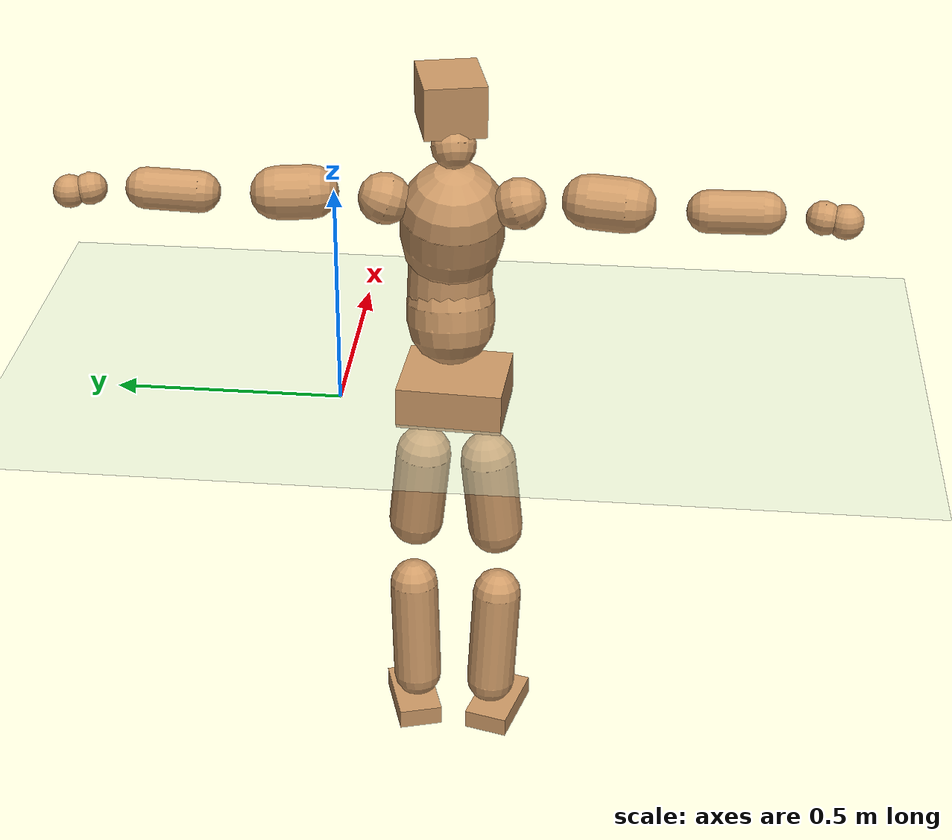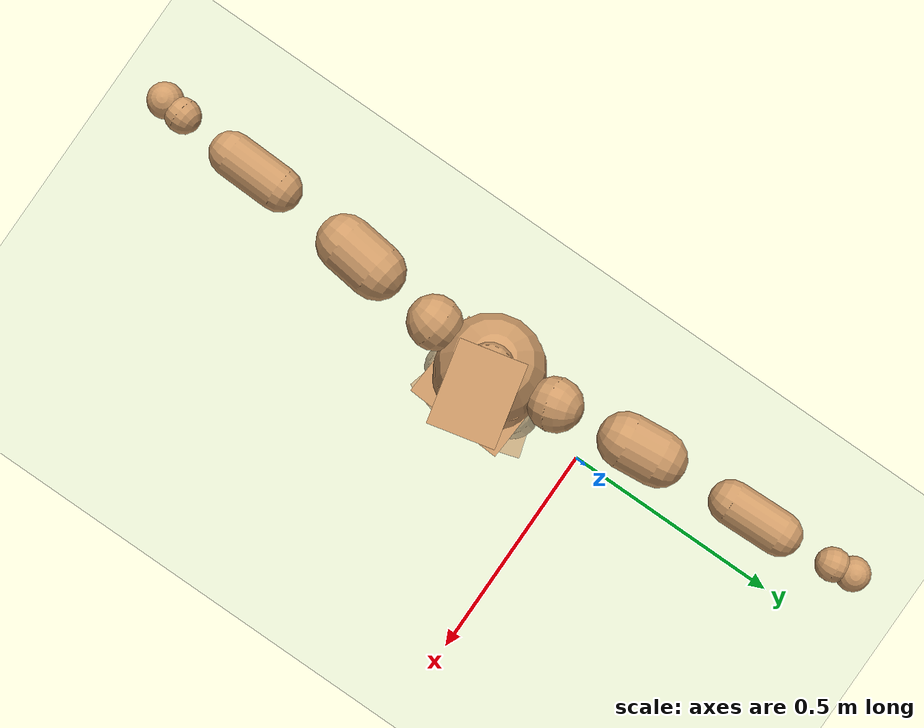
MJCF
<mujoco model="humanoid">
  <compiler coordinate="local" angle="radian"/>
  <default>
    <joint damping="0.0" armature="0.01" stiffness="0.0" limited="true"/>
    <geom conaffinity="1" condim="3" contype="7" margin="0.001" rgba="0.8 0.6 .4 1"/>
  </default>
  <asset>
    <texture type="skybox" builtin="gradient" rgb1=".4 .5 .6" rgb2="0 0 0" width="100" height="100"/>
    <texture builtin="flat" height="1278" mark="cross" markrgb="1 1 1" name="texgeom" random="0.01" rgb1="0.8 0.6 0.4" rgb2="0.8 0.6 0.4" type="cube" width="127"/>
    <texture builtin="checker" height="100" name="texplane" rgb1="0 0 0" rgb2="0.8 0.8 0.8" type="2d" width="100"/>
    <material name="MatPlane" reflectance="0.5" shininess="1" specular="1" texrepeat="60 60" texture="texplane"/>
    <material name="geom" texture="texgeom" texuniform="true"/>
  </asset>
  <worldbody>
    <light cutoff="100" diffuse="1 1 1" dir="-0 0 -1.3" directional="true" exponent="1" pos="0 0 1.3" specular=".1 .1 .1"/>
    <geom conaffinity="1" condim="3" name="floor" pos="0 0 0" rgba="0.8 0.9 0.8 1" size="100 100 .2" type="plane" material="MatPlane"/>
    <body name="Pelvis" pos="-0.001 -0.2582 0.0446">
      <freejoint name="Pelvis"/>
      <geom type="box" contype="1" conaffinity="1" density="5359.374884" pos="-0.0097 0.0006 -0.0072" size="0.1011 0.115 0.047" quat="0.9996 0.0000 0.0000 -0.0291" name="Pelvis"/>
      <body name="L_Hip" pos="-0.0066 0.0619 -0.0843">
        <joint name="L_Hip_x" type="hinge" pos="0 0 0" axis="1 0 0" stiffness="1600" damping="160" armature="0.02" range="-180.0000 180.0000"/>
        <joint name="L_Hip_y" type="hinge" pos="0 0 0" axis="0 1 0" stiffness="1600" damping="160" armature="0.02" range="-180.0000 180.0000"/>
        <joint name="L_Hip_z" type="hinge" pos="0 0 0" axis="0 0 1" stiffness="1600" damping="160" armature="0.02" range="-180.0000 180.0000"/>
        <geom type="capsule" contype="1" conaffinity="1" density="2040.816327" size="0.0621" fromto="0.0022 0.0094 -0.0916 0.0064 0.0279 -0.2724" name="L_Hip"/>
        <body name="L_Knee" pos="0.0086 0.0373 -0.364">
          <joint name="L_Knee_x" type="hinge" pos="0 0 0" axis="1 0 0" stiffness="1600" damping="160" armature="0.02" range="-180.0000 180.0000"/>
          <joint name="L_Knee_y" type="hinge" pos="0 0 0" axis="0 1 0" stiffness="1600" damping="160" armature="0.02" range="-180.0000 180.0000"/>
          <joint name="L_Knee_z" type="hinge" pos="0 0 0" axis="0 0 1" stiffness="1600" damping="160" armature="0.02" range="-180.0000 180.0000"/>
          <geom type="capsule" contype="1" conaffinity="1" density="1234.567901" size="0.0553" fromto="-0.0081 -0.0033 -0.0848 -0.0315 -0.0127 -0.3282" name="L_Knee"/>
          <body name="L_Ankle" pos="-0.0396 -0.016 -0.413">
            <joint name="L_Ankle_x" type="hinge" pos="0 0 0" axis="1 0 0" stiffness="1600" damping="160" armature="0.02" range="-180.0000 180.0000"/>
            <joint name="L_Ankle_y" type="hinge" pos="0 0 0" axis="0 1 0" stiffness="1600" damping="160" armature="0.02" range="-180.0000 180.0000"/>
            <joint name="L_Ankle_z" type="hinge" pos="0 0 0" axis="0 0 1" stiffness="1600" damping="160" armature="0.02" range="-180.0000 180.0000"/>
            <geom type="box" contype="1" conaffinity="1" density="1000.000008" pos="0.0603 0.0181 -0.0290" size="0.0875 0.0499 0.023" quat="0.9894 0.0000 0.0000 0.1453" name="L_Ankle"/>
            <body name="L_Toe" pos="0.1207 0.0362 -0.058">
              <joint name="L_Toe_x" type="hinge" pos="0 0 0" axis="1 0 0" stiffness="1000" damping="100" armature="0.02" range="-180.0000 180.0000"/>
              <joint name="L_Toe_y" type="hinge" pos="0 0 0" axis="0 1 0" stiffness="1000" damping="100" armature="0.02" range="-180.0000 180.0000"/>
              <joint name="L_Toe_z" type="hinge" pos="0 0 0" axis="0 0 1" stiffness="1000" damping="100" armature="0.02" range="-180.0000 180.0000"/>
              <geom type="box" contype="1" conaffinity="1" density="8637993.571903" pos="0.0000 0.0000 0.0291" size="0.001 0.0024 0.0012" quat="0.9886 0.0000 0.0000 0.1505" name="L_Toe"/>
            </body>
          </body>
        </body>
      </body>
      <body name="R_Hip" pos="-0.0009 -0.063 -0.0937">
        <joint name="R_Hip_x" type="hinge" pos="0 0 0" axis="1 0 0" stiffness="1600" damping="160" armature="0.02" range="-180.0000 180.0000"/>
        <joint name="R_Hip_y" type="hinge" pos="0 0 0" axis="0 1 0" stiffness="1600" damping="160" armature="0.02" range="-180.0000 180.0000"/>
        <joint name="R_Hip_z" type="hinge" pos="0 0 0" axis="0 0 1" stiffness="1600" damping="160" armature="0.02" range="-180.0000 180.0000"/>
        <geom type="capsule" contype="1" conaffinity="1" density="2040.816327" size="0.0618" fromto="-0.0007 -0.0098 -0.0913 -0.0022 -0.0294 -0.2736" name="R_Hip"/>
        <body name="R_Knee" pos="-0.003 -0.0392 -0.3649">
          <joint name="R_Knee_x" type="hinge" pos="0 0 0" axis="1 0 0" stiffness="1600" damping="160" armature="0.02" range="-180.0000 180.0000"/>
          <joint name="R_Knee_y" type="hinge" pos="0 0 0" axis="0 1 0" stiffness="1600" damping="160" armature="0.02" range="-180.0000 180.0000"/>
          <joint name="R_Knee_z" type="hinge" pos="0 0 0" axis="0 0 1" stiffness="1600" damping="160" armature="0.02" range="-180.0000 180.0000"/>
          <geom type="capsule" contype="1" conaffinity="1" density="1234.567901" size="0.0555" fromto="-0.0076 0.0039 -0.0850 -0.0288 0.0148 -0.3219" name="R_Knee"/>
          <body name="R_Ankle" pos="-0.0364 0.0187 -0.4069">
            <joint name="R_Ankle_x" type="hinge" pos="0 0 0" axis="1 0 0" stiffness="1600" damping="160" armature="0.02" range="-180.0000 180.0000"/>
            <joint name="R_Ankle_y" type="hinge" pos="0 0 0" axis="0 1 0" stiffness="1600" damping="160" armature="0.02" range="-180.0000 180.0000"/>
            <joint name="R_Ankle_z" type="hinge" pos="0 0 0" axis="0 0 1" stiffness="1600" damping="160" armature="0.02" range="-180.0000 180.0000"/>
            <geom type="box" contype="1" conaffinity="1" density="1000.000006" pos="0.0636 -0.0169 -0.0298" size="0.0887 0.0505 0.0225" quat="0.9916 0.0000 0.0000 -0.1296" name="R_Ankle"/>
            <body name="R_Toe" pos="0.1273 -0.0339 -0.0597">
              <joint name="R_Toe_x" type="hinge" pos="0 0 0" axis="1 0 0" stiffness="1000" damping="100" armature="0.02" range="-180.0000 180.0000"/>
              <joint name="R_Toe_y" type="hinge" pos="0 0 0" axis="0 1 0" stiffness="1000" damping="100" armature="0.02" range="-180.0000 180.0000"/>
              <joint name="R_Toe_z" type="hinge" pos="0 0 0" axis="0 0 1" stiffness="1000" damping="100" armature="0.02" range="-180.0000 180.0000"/>
              <geom type="box" contype="1" conaffinity="1" density="8129787.91884" pos="0.0000 0.0000 0.0306" size="0.0011 0.0025 0.0012" quat="0.9927 0.0000 0.0000 -0.1205" name="R_Toe"/>
            </body>
          </body>
        </body>
      </body>
      <body name="Torso" pos="-0.051 0.0046 0.1346">
        <joint name="Torso_x" type="hinge" pos="0 0 0" axis="1 0 0" stiffness="2000" damping="200" armature="0.02" range="-180.0000 180.0000"/>
        <joint name="Torso_y" type="hinge" pos="0 0 0" axis="0 1 0" stiffness="2000" damping="200" armature="0.02" range="-180.0000 180.0000"/>
        <joint name="Torso_z" type="hinge" pos="0 0 0" axis="0 0 1" stiffness="2000" damping="200" armature="0.02" range="-180.0000 180.0000"/>
        <geom type="capsule" contype="1" conaffinity="1" density="2040.816327" size="0.0945" fromto="0.0163 0.0037 0.0930 0.0084 0.0019 0.0481" name="Torso"/>
        <body name="Spine" pos="0.0247 0.0056 0.1411">
          <joint name="Spine_x" type="hinge" pos="0 0 0" axis="1 0 0" stiffness="2000" damping="200" armature="0.02" range="-180.0000 180.0000"/>
          <joint name="Spine_y" type="hinge" pos="0 0 0" axis="0 1 0" stiffness="2000" damping="200" armature="0.02" range="-180.0000 180.0000"/>
          <joint name="Spine_z" type="hinge" pos="0 0 0" axis="0 0 1" stiffness="2000" damping="200" armature="0.02" range="-180.0000 180.0000"/>
          <geom type="capsule" contype="1" conaffinity="1" density="2040.816327" size="0.0905" fromto="0.0057 -0.0047 0.0902 -0.0021 0.0017 -0.0332" name="Spine"/>
          <body name="Chest" pos="0.0036 -0.0029 0.057">
            <joint name="Chest_x" type="hinge" pos="0 0 0" axis="1 0 0" stiffness="2000" damping="200" armature="0.02" range="-180.0000 180.0000"/>
            <joint name="Chest_y" type="hinge" pos="0 0 0" axis="0 1 0" stiffness="2000" damping="200" armature="0.02" range="-180.0000 180.0000"/>
            <joint name="Chest_z" type="hinge" pos="0 0 0" axis="0 0 1" stiffness="2000" damping="200" armature="0.02" range="-180.0000 180.0000"/>
            <geom type="capsule" contype="1" conaffinity="1" density="2040.816327" size="0.1097" fromto="-0.0256 -0.0056 0.1065 -0.0106 -0.0023 0.0439" name="Chest"/>
            <body name="Neck" pos="-0.0501 -0.0116 0.2164">
              <joint name="Neck_x" type="hinge" pos="0 0 0" axis="1 0 0" stiffness="1000" damping="100" armature="0.02" range="-180.0000 180.0000"/>
              <joint name="Neck_y" type="hinge" pos="0 0 0" axis="0 1 0" stiffness="1000" damping="100" armature="0.02" range="-180.0000 180.0000"/>
              <joint name="Neck_z" type="hinge" pos="0 0 0" axis="0 0 1" stiffness="1000" damping="100" armature="0.02" range="-180.0000 180.0000"/>
              <geom type="capsule" contype="1" conaffinity="1" density="1000" size="0.0473" fromto="0.0249 0.0051 0.0383 0.0259 0.0053 0.0400" name="Neck"/>
              <body name="Head" pos="0.0508 0.0104 0.0783">
                <joint name="Head_x" type="hinge" pos="0 0 0" axis="1 0 0" stiffness="1000" damping="100" armature="0.02" range="-180.0000 180.0000"/>
                <joint name="Head_y" type="hinge" pos="0 0 0" axis="0 1 0" stiffness="1000" damping="100" armature="0.02" range="-180.0000 180.0000"/>
                <joint name="Head_z" type="hinge" pos="0 0 0" axis="0 0 1" stiffness="1000" damping="100" armature="0.02" range="-180.0000 180.0000"/>
                <geom type="box" contype="1" conaffinity="1" density="2249.999859" pos="0.0264 0.0062 0.0402" size="0.0811 0.0651 0.0552" quat="0.9933 0.0000 0.0000 0.1152" name="Head"/>
              </body>
            </body>
            <body name="L_Thorax" pos="-0.0278 0.0729 0.118">
              <joint name="L_Thorax_x" type="hinge" pos="0 0 0" axis="1 0 0" stiffness="1000" damping="100" armature="0.02" range="-180.0000 180.0000"/>
              <joint name="L_Thorax_y" type="hinge" pos="0 0 0" axis="0 1 0" stiffness="1000" damping="100" armature="0.02" range="-180.0000 180.0000"/>
              <joint name="L_Thorax_z" type="hinge" pos="0 0 0" axis="0 0 1" stiffness="1000" damping="100" armature="0.02" range="-180.0000 180.0000"/>
              <geom type="capsule" contype="1" conaffinity="1" density="1000" size="0.0547" fromto="-0.0114 0.0613 0.0201 -0.0118 0.0631 0.0208" name="L_Thorax"/>
              <body name="L_Shoulder" pos="-0.0232 0.1244 0.0409">
                <joint name="L_Shoulder_x" type="hinge" pos="0 0 0" axis="1 0 0" stiffness="1000" damping="100" armature="0.02" range="-720.0000 720.0000"/>
                <joint name="L_Shoulder_y" type="hinge" pos="0 0 0" axis="0 1 0" stiffness="1000" damping="100" armature="0.02" range="-720.0000 720.0000"/>
                <joint name="L_Shoulder_z" type="hinge" pos="0 0 0" axis="0 0 1" stiffness="1000" damping="100" armature="0.02" range="-720.0000 720.0000"/>
                <geom type="capsule" contype="1" conaffinity="1" density="1000" size="0.0565" fromto="-0.0086 0.0860 -0.0031 -0.0157 0.1564 -0.0056" name="L_Shoulder"/>
                <body name="L_Elbow" pos="-0.0243 0.2425 -0.0087">
                  <joint name="L_Elbow_x" type="hinge" pos="0 0 0" axis="1 0 0" stiffness="1000" damping="100" armature="0.02" range="-720.0000 720.0000"/>
                  <joint name="L_Elbow_y" type="hinge" pos="0 0 0" axis="0 1 0" stiffness="1000" damping="100" armature="0.02" range="-720.0000 720.0000"/>
                  <joint name="L_Elbow_z" type="hinge" pos="0 0 0" axis="0 0 1" stiffness="1000" damping="100" armature="0.02" range="-720.0000 720.0000"/>
                  <geom type="capsule" contype="1" conaffinity="1" density="1000" size="0.0439" fromto="-0.0023 0.0737 0.0035 -0.0057 0.1834 0.0087" name="L_Elbow"/>
                  <body name="L_Wrist" pos="-0.0079 0.2571 0.0123">
                    <joint name="L_Wrist_x" type="hinge" pos="0 0 0" axis="1 0 0" stiffness="600" damping="60" armature="0.02" range="-180.0000 180.0000"/>
                    <joint name="L_Wrist_y" type="hinge" pos="0 0 0" axis="0 1 0" stiffness="600" damping="60" armature="0.02" range="-180.0000 180.0000"/>
                    <joint name="L_Wrist_z" type="hinge" pos="0 0 0" axis="0 0 1" stiffness="600" damping="60" armature="0.02" range="-180.0000 180.0000"/>
                    <geom type="capsule" contype="1" conaffinity="1" density="1000" size="0.0339" fromto="-0.0072 0.0411 -0.0049 -0.0076 0.0431 -0.0052" name="L_Wrist"/>
                    <body name="L_Hand" pos="-0.0148 0.0842 -0.0101">
                      <joint name="L_Hand_x" type="hinge" pos="0 0 0" axis="1 0 0" stiffness="600" damping="60" armature="0.02" range="-180.0000 180.0000"/>
                      <joint name="L_Hand_y" type="hinge" pos="0 0 0" axis="0 1 0" stiffness="600" damping="60" armature="0.02" range="-180.0000 180.0000"/>
                      <joint name="L_Hand_z" type="hinge" pos="0 0 0" axis="0 0 1" stiffness="600" damping="60" armature="0.02" range="-180.0000 180.0000"/>
                      <geom type="sphere" contype="1" conaffinity="1" density="1000" size="0.0347" pos="0.0000 0.0000 0.0000" name="L_Hand"/>
                    </body>
                  </body>
                </body>
              </body>
            </body>
            <body name="R_Thorax" pos="-0.0306 -0.0852 0.1168">
              <joint name="R_Thorax_x" type="hinge" pos="0 0 0" axis="1 0 0" stiffness="1000" damping="100" armature="0.02" range="-180.0000 180.0000"/>
              <joint name="R_Thorax_y" type="hinge" pos="0 0 0" axis="0 1 0" stiffness="1000" damping="100" armature="0.02" range="-180.0000 180.0000"/>
              <joint name="R_Thorax_z" type="hinge" pos="0 0 0" axis="0 0 1" stiffness="1000" damping="100" armature="0.02" range="-180.0000 180.0000"/>
              <geom type="capsule" contype="1" conaffinity="1" density="1000" size="0.0546" fromto="-0.0060 -0.0569 0.0206 -0.0062 -0.0587 0.0212" name="R_Thorax"/>
              <body name="R_Shoulder" pos="-0.0122 -0.1156 0.0418">
                <joint name="R_Shoulder_x" type="hinge" pos="0 0 0" axis="1 0 0" stiffness="1000" damping="100" armature="0.02" range="-720.0000 720.0000"/>
                <joint name="R_Shoulder_y" type="hinge" pos="0 0 0" axis="0 1 0" stiffness="1000" damping="100" armature="0.02" range="-720.0000 720.0000"/>
                <joint name="R_Shoulder_z" type="hinge" pos="0 0 0" axis="0 0 1" stiffness="1000" damping="100" armature="0.02" range="-720.0000 720.0000"/>
                <geom type="capsule" contype="1" conaffinity="1" density="1000" size="0.0571" fromto="-0.0106 -0.0865 -0.0015 -0.0202 -0.1658 -0.0029" name="R_Shoulder"/>
                <body name="R_Elbow" pos="-0.0308 -0.2523 -0.0043">
                  <joint name="R_Elbow_x" type="hinge" pos="0 0 0" axis="1 0 0" stiffness="1000" damping="100" armature="0.02" range="-720.0000 720.0000"/>
                  <joint name="R_Elbow_y" type="hinge" pos="0 0 0" axis="0 1 0" stiffness="1000" damping="100" armature="0.02" range="-720.0000 720.0000"/>
                  <joint name="R_Elbow_z" type="hinge" pos="0 0 0" axis="0 0 1" stiffness="1000" damping="100" armature="0.02" range="-720.0000 720.0000"/>
                  <geom type="capsule" contype="1" conaffinity="1" density="1000" size="0.0446" fromto="-0.0021 -0.0746 0.0020 -0.0052 -0.1856 0.0051" name="R_Elbow"/>
                  <body name="R_Wrist" pos="-0.0073 -0.2602 0.0071">
                    <joint name="R_Wrist_x" type="hinge" pos="0 0 0" axis="1 0 0" stiffness="600" damping="60" armature="0.02" range="-180.0000 180.0000"/>
                    <joint name="R_Wrist_y" type="hinge" pos="0 0 0" axis="0 1 0" stiffness="600" damping="60" armature="0.02" range="-180.0000 180.0000"/>
                    <joint name="R_Wrist_z" type="hinge" pos="0 0 0" axis="0 0 1" stiffness="600" damping="60" armature="0.02" range="-180.0000 180.0000"/>
                    <geom type="capsule" contype="1" conaffinity="1" density="1000" size="0.0352" fromto="-0.0047 -0.0431 -0.0042 -0.0049 -0.0451 -0.0044" name="R_Wrist"/>
                    <body name="R_Hand" pos="-0.0096 -0.0882 -0.0085">
                      <joint name="R_Hand_x" type="hinge" pos="0 0 0" axis="1 0 0" stiffness="600" damping="60" armature="0.02" range="-180.0000 180.0000"/>
                      <joint name="R_Hand_y" type="hinge" pos="0 0 0" axis="0 1 0" stiffness="600" damping="60" armature="0.02" range="-180.0000 180.0000"/>
                      <joint name="R_Hand_z" type="hinge" pos="0 0 0" axis="0 0 1" stiffness="600" damping="60" armature="0.02" range="-180.0000 180.0000"/>
                      <geom type="sphere" contype="1" conaffinity="1" density="1000" size="0.0360" pos="0.0000 0.0000 0.0000" name="R_Hand"/>
                    </body>
                  </body>
                </body>
              </body>
            </body>
          </body>
        </body>
      </body>
    </body>
  </worldbody>
  <actuator>
    <motor name="L_Hip_x" joint="L_Hip_x" gear="500"/>
    <motor name="L_Hip_y" joint="L_Hip_y" gear="500"/>
    <motor name="L_Hip_z" joint="L_Hip_z" gear="500"/>
    <motor name="L_Knee_x" joint="L_Knee_x" gear="500"/>
    <motor name="L_Knee_y" joint="L_Knee_y" gear="500"/>
    <motor name="L_Knee_z" joint="L_Knee_z" gear="500"/>
    <motor name="L_Ankle_x" joint="L_Ankle_x" gear="500"/>
    <motor name="L_Ankle_y" joint="L_Ankle_y" gear="500"/>
    <motor name="L_Ankle_z" joint="L_Ankle_z" gear="500"/>
    <motor name="L_Toe_x" joint="L_Toe_x" gear="500"/>
    <motor name="L_Toe_y" joint="L_Toe_y" gear="500"/>
    <motor name="L_Toe_z" joint="L_Toe_z" gear="500"/>
    <motor name="R_Hip_x" joint="R_Hip_x" gear="500"/>
    <motor name="R_Hip_y" joint="R_Hip_y" gear="500"/>
    <motor name="R_Hip_z" joint="R_Hip_z" gear="500"/>
    <motor name="R_Knee_x" joint="R_Knee_x" gear="500"/>
    <motor name="R_Knee_y" joint="R_Knee_y" gear="500"/>
    <motor name="R_Knee_z" joint="R_Knee_z" gear="500"/>
    <motor name="R_Ankle_x" joint="R_Ankle_x" gear="500"/>
    <motor name="R_Ankle_y" joint="R_Ankle_y" gear="500"/>
    <motor name="R_Ankle_z" joint="R_Ankle_z" gear="500"/>
    <motor name="R_Toe_x" joint="R_Toe_x" gear="500"/>
    <motor name="R_Toe_y" joint="R_Toe_y" gear="500"/>
    <motor name="R_Toe_z" joint="R_Toe_z" gear="500"/>
    <motor name="Torso_x" joint="Torso_x" gear="500"/>
    <motor name="Torso_y" joint="Torso_y" gear="500"/>
    <motor name="Torso_z" joint="Torso_z" gear="500"/>
    <motor name="Spine_x" joint="Spine_x" gear="500"/>
    <motor name="Spine_y" joint="Spine_y" gear="500"/>
    <motor name="Spine_z" joint="Spine_z" gear="500"/>
    <motor name="Chest_x" joint="Chest_x" gear="500"/>
    <motor name="Chest_y" joint="Chest_y" gear="500"/>
    <motor name="Chest_z" joint="Chest_z" gear="500"/>
    <motor name="Neck_x" joint="Neck_x" gear="500"/>
    <motor name="Neck_y" joint="Neck_y" gear="500"/>
    <motor name="Neck_z" joint="Neck_z" gear="500"/>
    <motor name="Head_x" joint="Head_x" gear="500"/>
    <motor name="Head_y" joint="Head_y" gear="500"/>
    <motor name="Head_z" joint="Head_z" gear="500"/>
    <motor name="L_Thorax_x" joint="L_Thorax_x" gear="500"/>
    <motor name="L_Thorax_y" joint="L_Thorax_y" gear="500"/>
    <motor name="L_Thorax_z" joint="L_Thorax_z" gear="500"/>
    <motor name="L_Shoulder_x" joint="L_Shoulder_x" gear="500"/>
    <motor name="L_Shoulder_y" joint="L_Shoulder_y" gear="500"/>
    <motor name="L_Shoulder_z" joint="L_Shoulder_z" gear="500"/>
    <motor name="L_Elbow_x" joint="L_Elbow_x" gear="500"/>
    <motor name="L_Elbow_y" joint="L_Elbow_y" gear="500"/>
    <motor name="L_Elbow_z" joint="L_Elbow_z" gear="500"/>
    <motor name="L_Wrist_x" joint="L_Wrist_x" gear="500"/>
    <motor name="L_Wrist_y" joint="L_Wrist_y" gear="500"/>
    <motor name="L_Wrist_z" joint="L_Wrist_z" gear="500"/>
    <motor name="L_Hand_x" joint="L_Hand_x" gear="500"/>
    <motor name="L_Hand_y" joint="L_Hand_y" gear="500"/>
    <motor name="L_Hand_z" joint="L_Hand_z" gear="500"/>
    <motor name="R_Thorax_x" joint="R_Thorax_x" gear="500"/>
    <motor name="R_Thorax_y" joint="R_Thorax_y" gear="500"/>
    <motor name="R_Thorax_z" joint="R_Thorax_z" gear="500"/>
    <motor name="R_Shoulder_x" joint="R_Shoulder_x" gear="500"/>
    <motor name="R_Shoulder_y" joint="R_Shoulder_y" gear="500"/>
    <motor name="R_Shoulder_z" joint="R_Shoulder_z" gear="500"/>
    <motor name="R_Elbow_x" joint="R_Elbow_x" gear="500"/>
    <motor name="R_Elbow_y" joint="R_Elbow_y" gear="500"/>
    <motor name="R_Elbow_z" joint="R_Elbow_z" gear="500"/>
    <motor name="R_Wrist_x" joint="R_Wrist_x" gear="500"/>
    <motor name="R_Wrist_y" joint="R_Wrist_y" gear="500"/>
    <motor name="R_Wrist_z" joint="R_Wrist_z" gear="500"/>
    <motor name="R_Hand_x" joint="R_Hand_x" gear="500"/>
    <motor name="R_Hand_y" joint="R_Hand_y" gear="500"/>
    <motor name="R_Hand_z" joint="R_Hand_z" gear="500"/>
  </actuator>
  <contact>
    <exclude body1="Torso" body2="Chest"/>
    <exclude body1="Head" body2="Chest"/>
    <exclude body1="R_Knee" body2="R_Toe"/>
    <exclude body1="R_Knee" body2="L_Ankle"/>
    <exclude body1="R_Knee" body2="L_Toe"/>
    <exclude body1="L_Knee" body2="L_Toe"/>
    <exclude body1="L_Knee" body2="R_Ankle"/>
    <exclude body1="L_Knee" body2="R_Toe"/>
    <exclude body1="L_Shoulder" body2="Chest"/>
    <exclude body1="R_Shoulder" body2="Chest"/>
  </contact>
  <sensor/>
  <size njmax="700" nconmax="700"/>
</mujoco>
